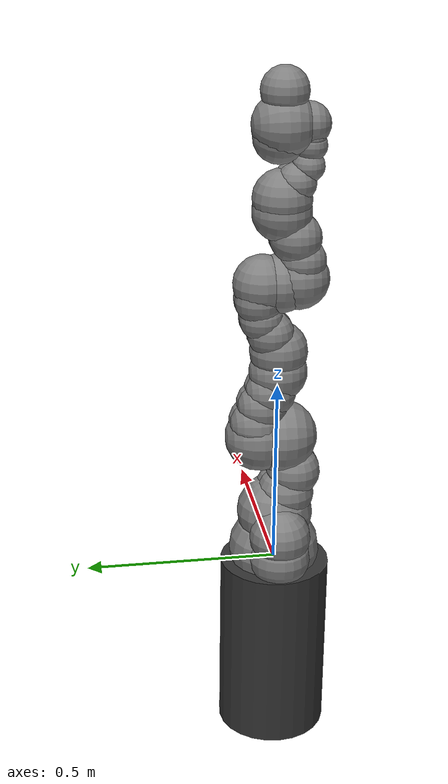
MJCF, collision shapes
<mujoco model="kuka_iiwa14">
  <compiler angle="radian" meshdir="assets" autolimits="true"/>

  <option integrator="implicitfast"/>

  <default>
    <default class="iiwa">
      <material specular="0.5" shininess="0.25"/>
      <joint axis="0 0 1" armature="0.1" damping="1"/>
      <general gaintype="fixed" biastype="affine" gainprm="2000" biasprm="0 -2000 -200"/>
      <default class="joint1">
        <joint range="-2.96706 2.96706"/>
        <general ctrlrange="-2.96706 2.96706"/>
        <default class="joint2">
          <joint range="-2.0944 2.0944"/>
          <general ctrlrange="-2.0944 2.0944"/>
        </default>
      </default>
      <default class="joint3">
        <joint range="-3.05433 3.05433"/>
        <general ctrlrange="-3.05433 3.05433"/>
      </default>
      <default class="visual">
        <geom type="mesh" contype="0" conaffinity="0" group="2" material="gray"/>
      </default>
      <default class="collision">
        <geom group="3"/>
      </default>
      <site size="0.001" rgba="1 0 0 1" group="4"/>
    </default>
  </default>

  <visual>
    <headlight diffuse="0.8 0.8 0.8" ambient="0.3 0.3 0.3" specular="0 0 0"/>
    <rgba haze="0.15 0.25 0.35 1"/>
    <global azimuth="120" elevation="-20"/>
  </visual>

  <asset>
    <material class="iiwa" name="gray" rgba="0.4 0.4 0.4 1"/>
    <material class="iiwa" name="light_gray" rgba="0.6 0.6 0.6 1"/>
    <material class="iiwa" name="black" rgba="0 0 0 1"/>
    <material class="iiwa" name="orange" rgba="1 0.423529 0.0392157 1"/>

    <mesh file="link_0.obj"/>
    <mesh file="link_1.obj"/>
    <mesh file="link_2_orange.obj"/>
    <mesh file="link_2_grey.obj"/>
    <mesh file="link_3.obj"/>
    <mesh file="band.obj"/>
    <mesh file="kuka.obj"/>
    <mesh file="link_4_orange.obj"/>
    <mesh file="link_4_grey.obj"/>
    <mesh file="link_5.obj"/>
    <mesh file="link_6_orange.obj"/>
    <mesh file="link_6_grey.obj"/>
    <mesh file="link_7.obj"/>
  </asset>

  <worldbody>
    <body name="base" childclass="iiwa">
      <inertial mass="5" pos="-0.1 0 0.07" diaginertia="0.05 0.06 0.03"/>
      <geom name="pedestal" type="cylinder" size="0.144 0.25" pos="-0.01 0 -0.25"
        rgba="0.2 0.2 0.2 1" contype="0" conaffinity="0" group="2"/>
      <geom class="visual" mesh="link_0"/>
      <geom name="link0_collision_0" class="collision" size="0.12" pos="0 0 0.03"/>
      <geom name="link0_collision_1" class="collision" size="0.08" pos="-0.08 0 0.103"/>
      <geom name="link0_collision_2" class="collision" size="0.08" pos="-0.08 0 0.04"/>
      <geom name="link0_collision_3" class="collision" size="0.1" pos="0 0 0.14"/>
      <body name="link1" pos="0 0 0.1575" gravcomp="1">
        <inertial mass="5.76" pos="0 -0.03 0.12" diaginertia="0.0333 0.033 0.0123"/>
        <joint name="joint1" class="joint1"/>
        <geom class="visual" mesh="link_1"/>
        <geom name="link1_collision_0" class="collision" size="0.08" pos="0 0 -0.0005"/>
        <geom name="link1_collision_1" class="collision" size="0.075" pos="0.01 -0.025 0.0425"/>
        <geom name="link1_collision_2" class="collision" size="0.075" pos="-0.01 -0.025 0.0425"/>
        <geom name="link1_collision_3" class="collision" size="0.07" pos="0.01 -0.045 0.1025"/>
        <geom name="link1_collision_4" class="collision" size="0.07" pos="-0.01 -0.045 0.1025"/>
        <body name="link2" pos="0 0 0.2025" quat="0 0 1 1" gravcomp="1">
          <inertial mass="6.35" pos="0.0003 0.059 0.042" diaginertia="0.0305 0.0304 0.011" quat="0 0 1 1"/>
          <joint name="joint2" class="joint2"/>
          <geom class="visual" material="orange" mesh="link_2_orange"/>
          <geom class="visual" mesh="link_2_grey"/>
          <geom name="link2_collision_0" class="collision" size="0.095" pos="0 0 -0.01"/>
          <geom name="link2_collision_1" class="collision" size="0.09" pos="0 0 0.045"/>
          <geom name="link2_collision_2" class="collision" size="0.07" pos="-0.01 0.04 0.054"/>
          <geom name="link2_collision_3" class="collision" size="0.065" pos="-0.01 0.09 0.04"/>
          <geom name="link2_collision_4" class="collision" size="0.065" pos="-0.01 0.13 0.02"/>
          <geom name="link2_collision_5" class="collision" size="0.07" pos="0.01 0.04 0.054"/>
          <geom name="link2_collision_6" class="collision" size="0.065" pos="0.01 0.09 0.04"/>
          <geom name="link2_collision_7" class="collision" size="0.065" pos="0.01 0.13 0.02"/>
          <geom name="link2_collision_8" class="collision" size="0.075" pos="0 0.18 0"/>
          <body name="link3" pos="0 0.2045 0" quat="0 0 1 1" gravcomp="1">
            <inertial mass="3.5" pos="0 0.03 0.13" diaginertia="0.025 0.0238 0.0076"/>
            <joint name="joint3" class="joint1"/>
            <geom class="visual" mesh="link_3"/>
            <geom class="visual" material="light_gray" mesh="band"/>
            <geom class="visual" material="black" mesh="kuka"/>
            <geom name="link3_collision_0" class="collision" size="0.075" pos="0 0 0.0355"/>
            <geom name="link3_collision_1" class="collision" size="0.06" pos="0.01 0.023 0.0855"/>
            <geom name="link3_collision_2" class="collision" size="0.055" pos="0.01 0.048 0.1255"/>
            <geom name="link3_collision_3" class="collision" size="0.06" pos="0.01 0.056 0.1755"/>
            <geom name="link3_collision_4" class="collision" size="0.06" pos="-0.01 0.023 0.0855"/>
            <geom name="link3_collision_5" class="collision" size="0.055" pos="-0.01 0.048 0.1255"/>
            <geom name="link3_collision_6" class="collision" size="0.06" pos="-0.01 0.056 0.1755"/>
            <geom name="link3_collision_7" class="collision" size="0.075" pos="0 0.045 0.2155"/>
            <geom name="link3_collision_8" class="collision" size="0.075" pos="0 0 0.2155"/>
            <body name="link4" pos="0 0 0.2155" quat="1 1 0 0" gravcomp="1">
              <inertial mass="3.5" pos="0 0.067 0.034" diaginertia="0.017 0.0164 0.006" quat="1 1 0 0"/>
              <joint name="joint4" class="joint2"/>
              <geom class="visual" material="orange" mesh="link_4_orange"/>
              <geom class="visual" mesh="link_4_grey"/>
              <geom name="link4_collision_0" class="collision" size="0.078" pos="0 0.01 0.046"/>
              <geom name="link4_collision_1" class="collision" size="0.06" pos="0.01 0.06 0.052"/>
              <geom name="link4_collision_2" class="collision" size="0.065" pos="0.01 0.12 0.034"/>
              <geom name="link4_collision_3" class="collision" size="0.06" pos="-0.01 0.06 0.052"/>
              <geom name="link4_collision_4" class="collision" size="0.065" pos="-0.01 0.12 0.034"/>
              <geom name="link4_collision_5" class="collision" size="0.075" pos="0 0.184 0"/>
              <body name="link5" pos="0 0.1845 0" quat="0 0 1 1" gravcomp="1">
                <inertial mass="3.5" pos="0.0001 0.021 0.076" diaginertia="0.01 0.0087 0.00449"/>
                <joint name="joint5" class="joint1"/>
                <geom class="visual" mesh="link_5"/>
                <geom class="visual" material="light_gray" mesh="band"/>
                <geom class="visual" material="black" mesh="kuka"/>
                <geom name="link5_collision_0" class="collision" size="0.075" pos="0 0 0.0335"/>
                <geom name="link5_collision_1" class="collision" size="0.05" pos="-0.012 0.031 0.0755"/>
                <geom name="link5_collision_2" class="collision" size="0.05" pos="0.012 0.031 0.0755"/>
                <geom name="link5_collision_3" class="collision" size="0.04" pos="-0.012 0.06 0.1155"/>
                <geom name="link5_collision_4" class="collision" size="0.04" pos="0.012 0.06 0.1155"/>
                <geom name="link5_collision_5" class="collision" size="0.04" pos="-0.01 0.065 0.1655"/>
                <geom name="link5_collision_6" class="collision" size="0.04" pos="0.01 0.065 0.1655"/>
                <geom name="link5_collision_7" class="collision" size="0.035" pos="-0.012 0.065 0.1855"/>
                <geom name="link5_collision_8" class="collision" size="0.035" pos="0.012 0.065 0.1855"/>
                <body name="link6" pos="0 0 0.2155" quat="1 1 0 0" gravcomp="1">
                  <inertial mass="1.8" pos="0 0.0006 0.0004" diaginertia="0.0049 0.0047 0.0036" quat="1 1 0 0"/>
                  <joint name="joint6" class="joint2"/>
                  <geom class="visual" material="orange" mesh="link_6_orange"/>
                  <geom class="visual" mesh="link_6_grey"/>
                  <geom name="link6_collision_0" class="collision" size="0.055" pos="0 0 -0.059"/>
                  <geom name="link6_collision_1" class="collision" size="0.065" pos="0 -0.03 0.011"/>
                  <geom name="link6_collision_2" class="collision" size="0.08"/>
                  <body name="link7" pos="0 0.081 0" quat="0 0 1 1" gravcomp="1">
                    <inertial mass="1.2" pos="0 0 0.02" diaginertia="0.001 0.001 0.001"/>
                    <joint name="joint7" class="joint3"/>
                    <geom class="visual" mesh="link_7"/>
                    <geom name="link7_collision_0" class="collision" size="0.06" pos="0 0 0.001"/>
                  </body>
                </body>
              </body>
            </body>
          </body>
        </body>
      </body>
    </body>
  </worldbody>

  <contact>
    <exclude body1="base" body2="link1"/>
    <exclude body1="base" body2="link2"/>
    <exclude body1="base" body2="link3"/>
    <exclude body1="link1" body2="link3"/>
    <exclude body1="link3" body2="link5"/>
    <exclude body1="link4" body2="link7"/>
    <exclude body1="link5" body2="link7"/>
  </contact>

  <actuator>
    <general name="actuator1" joint="joint1" class="joint1"/>
    <general name="actuator2" joint="joint2" class="joint2"/>
    <general name="actuator3" joint="joint3" class="joint1"/>
    <general name="actuator4" joint="joint4" class="joint2"/>
    <general name="actuator5" joint="joint5" class="joint1"/>
    <general name="actuator6" joint="joint6" class="joint2"/>
    <general name="actuator7" joint="joint7" class="joint3"/>
  </actuator>

  <keyframe>
    <key name="home" qpos="0 0.785398 0 -1.5708 0 0 0" ctrl="0 0.785398 0 -1.5708 0 0 0"/>
  </keyframe>
</mujoco>
